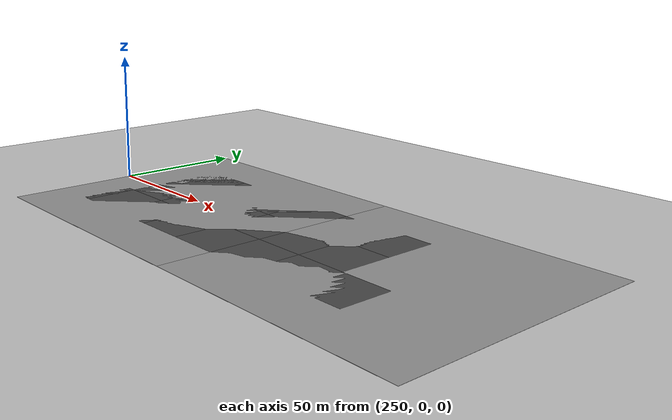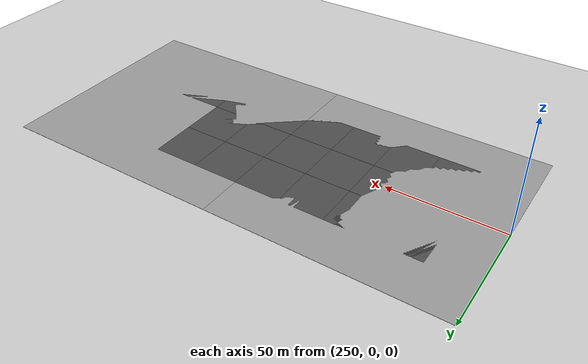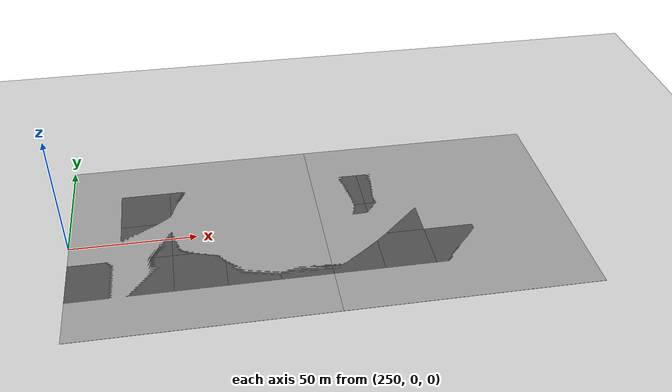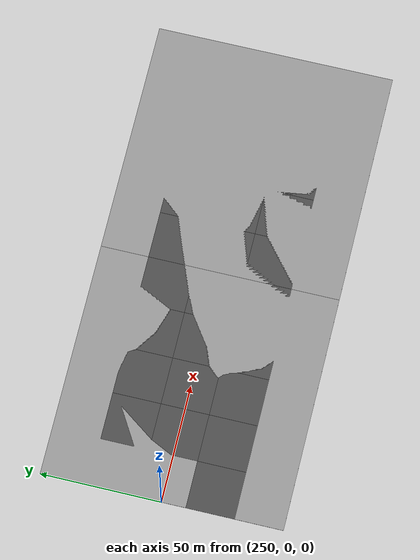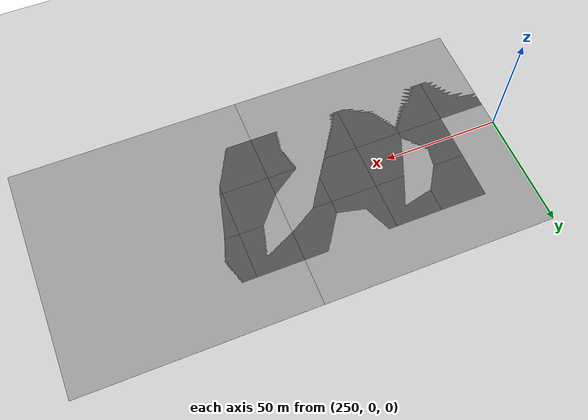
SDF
<sdf version="1.4">
 <world name="default">
  <model name="ground_plane">
   <static>1</static>
   <link name="link">
    <collision name="collision">
     <geometry><plane><normal>0 0 1</normal><size>100 100</size></plane></geometry>
     <surface><friction><ode><mu>100</mu><mu2>50</mu2></ode></friction></surface>
    </collision>
    <visual name="visual">
     <cast_shadows>0</cast_shadows>
     <geometry><plane><normal>0 0 1</normal><size>100 100</size></plane></geometry>
     <material>
      <script><uri>file://media/materials/scripts/gazebo.material</uri><name>Gazebo/Grey</name></script>
     </material>
    </visual>
    <velocity_decay><linear>0</linear><angular>0</angular></velocity_decay>
   </link>
  </model>
  <model name="ground_plane_2">
   <static>1</static>
   <link name="link">
    <collision name="collision">
     <geometry><plane><normal>0 0 1</normal><size>100 100</size></plane></geometry>
     <surface><friction><ode><mu>100</mu><mu2>50</mu2></ode></friction></surface>
    </collision>
    <visual name="visual">
     <cast_shadows>0</cast_shadows>
     <geometry><plane><normal>0 0 1</normal><size>100 100</size></plane></geometry>
     <material>
      <script><uri>file://media/materials/scripts/gazebo.material</uri><name>Gazebo/Grey</name></script>
     </material>
    </visual>
    <velocity_decay><linear>0</linear><angular>0</angular></velocity_decay>
   </link>
   <pose>300 0 0 0 -0 0</pose>
  </model>
  <model name="ground_plane_3">
   <static>1</static>
   <link name="link">
    <collision name="collision">
     <geometry><plane><normal>0 0 1</normal><size>100 100</size></plane></geometry>
     <surface><friction><ode><mu>100</mu><mu2>50</mu2></ode></friction></surface>
    </collision>
    <visual name="visual">
     <cast_shadows>0</cast_shadows>
     <geometry><plane><normal>0 0 1</normal><size>100 100</size></plane></geometry>
     <material>
      <script><uri>file://media/materials/scripts/gazebo.material</uri><name>Gazebo/Grey</name></script>
     </material>
    </visual>
    <velocity_decay><linear>0</linear><angular>0</angular></velocity_decay>
   </link>
   <pose>400 0 0 0 -0 0</pose>
  </model>
  <model name="asphalt_plane_9">
   <static>1</static>
   <link name="link">
    <collision name="collision"><geometry><box><size>20 20 0.1</size></box></geometry></collision>
    <visual name="visual">
     <cast_shadows>0</cast_shadows>
     <geometry><box><size>20 20 0.1</size></box></geometry>
     <material>
      <script>
       <uri>model://asphalt_plane/materials/scripts</uri>
       <uri>model://asphalt_plane/materials/textures</uri>
       <name>vrc/asphalt</name>
      </script>
     </material>
    </visual>
    <velocity_decay><linear>0</linear><angular>0</angular></velocity_decay>
   </link>
   <pose>260 -20 0 0 -0 0</pose>
  </model>
  <model name="asphalt_plane_10">
   <static>1</static>
   <link name="link">
    <collision name="collision"><geometry><box><size>20 20 0.1</size></box></geometry></collision>
    <visual name="visual">
     <cast_shadows>0</cast_shadows>
     <geometry><box><size>20 20 0.1</size></box></geometry>
     <material>
      <script>
       <uri>model://asphalt_plane/materials/scripts</uri>
       <uri>model://asphalt_plane/materials/textures</uri>
       <name>vrc/asphalt</name>
      </script>
     </material>
    </visual>
    <velocity_decay><linear>0</linear><angular>0</angular></velocity_decay>
   </link>
   <pose>280 20 0 0 -0 0</pose>
  </model>
  <model name="asphalt_plane_11">
   <static>1</static>
   <link name="link">
    <collision name="collision"><geometry><box><size>20 20 0.1</size></box></geometry></collision>
    <visual name="visual">
     <cast_shadows>0</cast_shadows>
     <geometry><box><size>20 20 0.1</size></box></geometry>
     <material>
      <script>
       <uri>model://asphalt_plane/materials/scripts</uri>
       <uri>model://asphalt_plane/materials/textures</uri>
       <name>vrc/asphalt</name>
      </script>
     </material>
    </visual>
    <velocity_decay><linear>0</linear><angular>0</angular></velocity_decay>
   </link>
   <pose>280 0 0 0 -0 0</pose>
  </model>
  <model name="asphalt_plane_12">
   <static>1</static>
   <link name="link">
    <collision name="collision"><geometry><box><size>20 20 0.1</size></box></geometry></collision>
    <visual name="visual">
     <cast_shadows>0</cast_shadows>
     <geometry><box><size>20 20 0.1</size></box></geometry>
     <material>
      <script>
       <uri>model://asphalt_plane/materials/scripts</uri>
       <uri>model://asphalt_plane/materials/textures</uri>
       <name>vrc/asphalt</name>
      </script>
     </material>
    </visual>
    <velocity_decay><linear>0</linear><angular>0</angular></velocity_decay>
   </link>
   <pose>280 -20 0 0 -0 0</pose>
  </model>
  <model name="asphalt_plane_13">
   <static>1</static>
   <link name="link">
    <collision name="collision"><geometry><box><size>20 20 0.1</size></box></geometry></collision>
    <visual name="visual">
     <cast_shadows>0</cast_shadows>
     <geometry><box><size>20 20 0.1</size></box></geometry>
     <material>
      <script>
       <uri>model://asphalt_plane/materials/scripts</uri>
       <uri>model://asphalt_plane/materials/textures</uri>
       <name>vrc/asphalt</name>
      </script>
     </material>
    </visual>
    <velocity_decay><linear>0</linear><angular>0</angular></velocity_decay>
   </link>
   <pose>300 -20 0 0 -0 0</pose>
  </model>
  <model name="asphalt_plane_14">
   <static>1</static>
   <link name="link">
    <collision name="collision"><geometry><box><size>20 20 0.1</size></box></geometry></collision>
    <visual name="visual">
     <cast_shadows>0</cast_shadows>
     <geometry><box><size>20 20 0.1</size></box></geometry>
     <material>
      <script>
       <uri>model://asphalt_plane/materials/scripts</uri>
       <uri>model://asphalt_plane/materials/textures</uri>
       <name>vrc/asphalt</name>
      </script>
     </material>
    </visual>
    <velocity_decay><linear>0</linear><angular>0</angular></velocity_decay>
   </link>
   <pose>300 0 0 0 -0 0</pose>
  </model>
  <model name="asphalt_plane_15">
   <static>1</static>
   <link name="link">
    <collision name="collision"><geometry><box><size>20 20 0.1</size></box></geometry></collision>
    <visual name="visual">
     <cast_shadows>0</cast_shadows>
     <geometry><box><size>20 20 0.1</size></box></geometry>
     <material>
      <script>
       <uri>model://asphalt_plane/materials/scripts</uri>
       <uri>model://asphalt_plane/materials/textures</uri>
       <name>vrc/asphalt</name>
      </script>
     </material>
    </visual>
    <velocity_decay><linear>0</linear><angular>0</angular></velocity_decay>
   </link>
   <pose>300 20 0 0 -0 0</pose>
  </model>
  <model name="asphalt_plane_16">
   <static>1</static>
   <link name="link">
    <collision name="collision"><geometry><box><size>20 20 0.1</size></box></geometry></collision>
    <visual name="visual">
     <cast_shadows>0</cast_shadows>
     <geometry><box><size>20 20 0.1</size></box></geometry>
     <material>
      <script>
       <uri>model://asphalt_plane/materials/scripts</uri>
       <uri>model://asphalt_plane/materials/textures</uri>
       <name>vrc/asphalt</name>
      </script>
     </material>
    </visual>
    <velocity_decay><linear>0</linear><angular>0</angular></velocity_decay>
   </link>
   <pose>320 -20 0 0 -0 0</pose>
  </model>
  <model name="asphalt_plane_17">
   <static>1</static>
   <link name="link">
    <collision name="collision"><geometry><box><size>20 20 0.1</size></box></geometry></collision>
    <visual name="visual">
     <cast_shadows>0</cast_shadows>
     <geometry><box><size>20 20 0.1</size></box></geometry>
     <material>
      <script>
       <uri>model://asphalt_plane/materials/scripts</uri>
       <uri>model://asphalt_plane/materials/textures</uri>
       <name>vrc/asphalt</name>
      </script>
     </material>
    </visual>
    <velocity_decay><linear>0</linear><angular>0</angular></velocity_decay>
   </link>
   <pose>320 0 0 0 -0 0</pose>
  </model>
  <model name="asphalt_plane_18">
   <static>1</static>
   <link name="link">
    <collision name="collision"><geometry><box><size>20 20 0.1</size></box></geometry></collision>
    <visual name="visual">
     <cast_shadows>0</cast_shadows>
     <geometry><box><size>20 20 0.1</size></box></geometry>
     <material>
      <script>
       <uri>model://asphalt_plane/materials/scripts</uri>
       <uri>model://asphalt_plane/materials/textures</uri>
       <name>vrc/asphalt</name>
      </script>
     </material>
    </visual>
    <velocity_decay><linear>0</linear><angular>0</angular></velocity_decay>
   </link>
   <pose>340 -20 0 0 -0 0</pose>
  </model>
  <model name="asphalt_plane_19">
   <static>1</static>
   <link name="link">
    <collision name="collision"><geometry><box><size>20 20 0.1</size></box></geometry></collision>
    <visual name="visual">
     <cast_shadows>0</cast_shadows>
     <geometry><box><size>20 20 0.1</size></box></geometry>
     <material>
      <script>
       <uri>model://asphalt_plane/materials/scripts</uri>
       <uri>model://asphalt_plane/materials/textures</uri>
       <name>vrc/asphalt</name>
      </script>
     </material>
    </visual>
    <velocity_decay><linear>0</linear><angular>0</angular></velocity_decay>
   </link>
   <pose>340 0 0 0 -0 0</pose>
  </model>
  <model name="asphalt_plane_20">
   <static>1</static>
   <link name="link">
    <collision name="collision"><geometry><box><size>20 20 0.1</size></box></geometry></collision>
    <visual name="visual">
     <cast_shadows>0</cast_shadows>
     <geometry><box><size>20 20 0.1</size></box></geometry>
     <material>
      <script>
       <uri>model://asphalt_plane/materials/scripts</uri>
       <uri>model://asphalt_plane/materials/textures</uri>
       <name>vrc/asphalt</name>
      </script>
     </material>
    </visual>
    <velocity_decay><linear>0</linear><angular>0</angular></velocity_decay>
   </link>
   <pose>320 20 0 0 -0 0</pose>
  </model>
  <model name="asphalt_plane_21">
   <static>1</static>
   <link name="link">
    <collision name="collision"><geometry><box><size>20 20 0.1</size></box></geometry></collision>
    <visual name="visual">
     <cast_shadows>0</cast_shadows>
     <geometry><box><size>20 20 0.1</size></box></geometry>
     <material>
      <script>
       <uri>model://asphalt_plane/materials/scripts</uri>
       <uri>model://asphalt_plane/materials/textures</uri>
       <name>vrc/asphalt</name>
      </script>
     </material>
    </visual>
    <velocity_decay><linear>0</linear><angular>0</angular></velocity_decay>
   </link>
   <pose>340 20 0 0 -0 0</pose>
  </model>
  <model name="asphalt_plane_22">
   <static>1</static>
   <link name="link">
    <collision name="collision"><geometry><box><size>20 20 0.1</size></box></geometry></collision>
    <visual name="visual">
     <cast_shadows>0</cast_shadows>
     <geometry><box><size>20 20 0.1</size></box></geometry>
     <material>
      <script>
       <uri>model://asphalt_plane/materials/scripts</uri>
       <uri>model://asphalt_plane/materials/textures</uri>
       <name>vrc/asphalt</name>
      </script>
     </material>
    </visual>
    <velocity_decay><linear>0</linear><angular>0</angular></velocity_decay>
   </link>
   <pose>360 -20 0 0 -0 0</pose>
  </model>
  <model name="asphalt_plane_23">
   <static>1</static>
   <link name="link">
    <collision name="collision"><geometry><box><size>20 20 0.1</size></box></geometry></collision>
    <visual name="visual">
     <cast_shadows>0</cast_shadows>
     <geometry><box><size>20 20 0.1</size></box></geometry>
     <material>
      <script>
       <uri>model://asphalt_plane/materials/scripts</uri>
       <uri>model://asphalt_plane/materials/textures</uri>
       <name>vrc/asphalt</name>
      </script>
     </material>
    </visual>
    <velocity_decay><linear>0</linear><angular>0</angular></velocity_decay>
   </link>
   <pose>360 0 0 0 -0 0</pose>
  </model>
  <model name="asphalt_plane_24">
   <static>1</static>
   <link name="link">
    <collision name="collision"><geometry><box><size>20 20 0.1</size></box></geometry></collision>
    <visual name="visual">
     <cast_shadows>0</cast_shadows>
     <geometry><box><size>20 20 0.1</size></box></geometry>
     <material>
      <script>
       <uri>model://asphalt_plane/materials/scripts</uri>
       <uri>model://asphalt_plane/materials/textures</uri>
       <name>vrc/asphalt</name>
      </script>
     </material>
    </visual>
    <velocity_decay><linear>0</linear><angular>0</angular></velocity_decay>
   </link>
   <pose>360 20 0 0 -0 0</pose>
  </model>
  <model name="asphalt_plane_25">
   <static>1</static>
   <link name="link">
    <collision name="collision"><geometry><box><size>20 20 0.1</size></box></geometry></collision>
    <visual name="visual">
     <cast_shadows>0</cast_shadows>
     <geometry><box><size>20 20 0.1</size></box></geometry>
     <material>
      <script>
       <uri>model://asphalt_plane/materials/scripts</uri>
       <uri>model://asphalt_plane/materials/textures</uri>
       <name>vrc/asphalt</name>
      </script>
     </material>
    </visual>
    <velocity_decay><linear>0</linear><angular>0</angular></velocity_decay>
   </link>
   <pose>380 -20 0 0 -0 0</pose>
  </model>
  <model name="asphalt_plane_26">
   <static>1</static>
   <link name="link">
    <collision name="collision"><geometry><box><size>20 20 0.1</size></box></geometry></collision>
    <visual name="visual">
     <cast_shadows>0</cast_shadows>
     <geometry><box><size>20 20 0.1</size></box></geometry>
     <material>
      <script>
       <uri>model://asphalt_plane/materials/scripts</uri>
       <uri>model://asphalt_plane/materials/textures</uri>
       <name>vrc/asphalt</name>
      </script>
     </material>
    </visual>
    <velocity_decay><linear>0</linear><angular>0</angular></velocity_decay>
   </link>
   <pose>380 0 0 0 -0 0</pose>
  </model>
  <model name="asphalt_plane_27">
   <static>1</static>
   <link name="link">
    <collision name="collision"><geometry><box><size>20 20 0.1</size></box></geometry></collision>
    <visual name="visual">
     <cast_shadows>0</cast_shadows>
     <geometry><box><size>20 20 0.1</size></box></geometry>
     <material>
      <script>
       <uri>model://asphalt_plane/materials/scripts</uri>
       <uri>model://asphalt_plane/materials/textures</uri>
       <name>vrc/asphalt</name>
      </script>
     </material>
    </visual>
    <velocity_decay><linear>0</linear><angular>0</angular></velocity_decay>
   </link>
   <pose>380 20 0 0 -0 0</pose>
  </model>
  <model name="asphalt_plane_28">
   <static>1</static>
   <link name="link">
    <collision name="collision"><geometry><box><size>20 20 0.1</size></box></geometry></collision>
    <visual name="visual">
     <cast_shadows>0</cast_shadows>
     <geometry><box><size>20 20 0.1</size></box></geometry>
     <material>
      <script>
       <uri>model://asphalt_plane/materials/scripts</uri>
       <uri>model://asphalt_plane/materials/textures</uri>
       <name>vrc/asphalt</name>
      </script>
     </material>
    </visual>
    <velocity_decay><linear>0</linear><angular>0</angular></velocity_decay>
   </link>
   <pose>400 -20 0 0 -0 0</pose>
  </model>
 </world>
</sdf>
